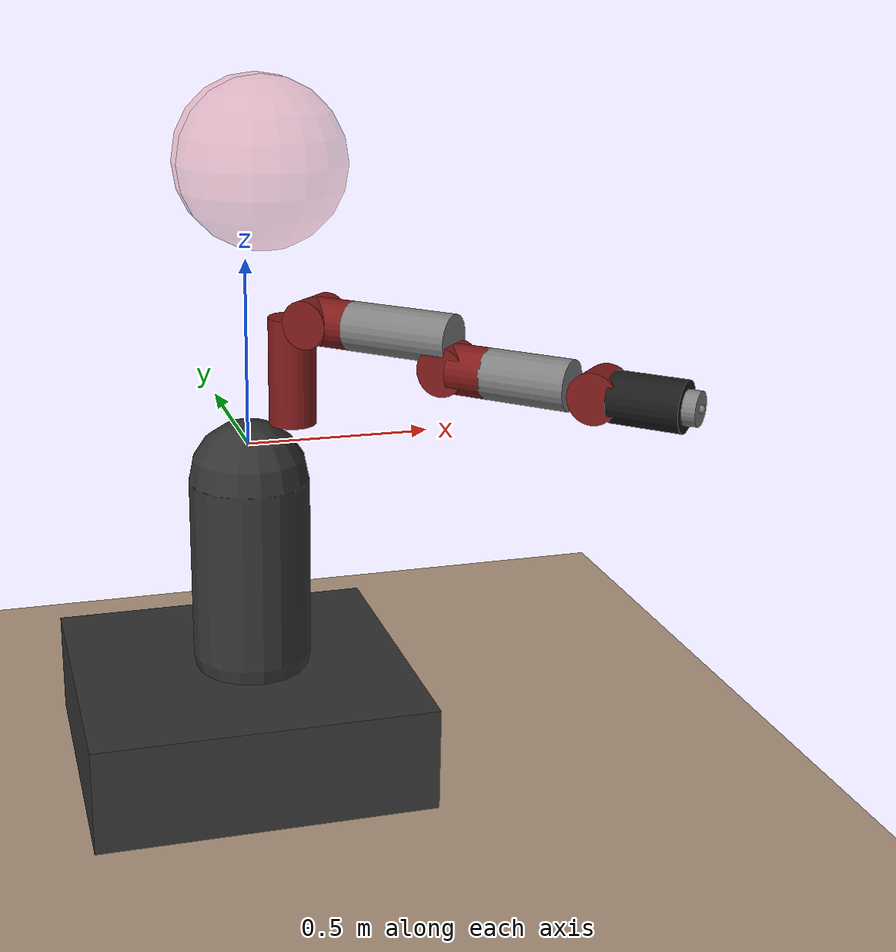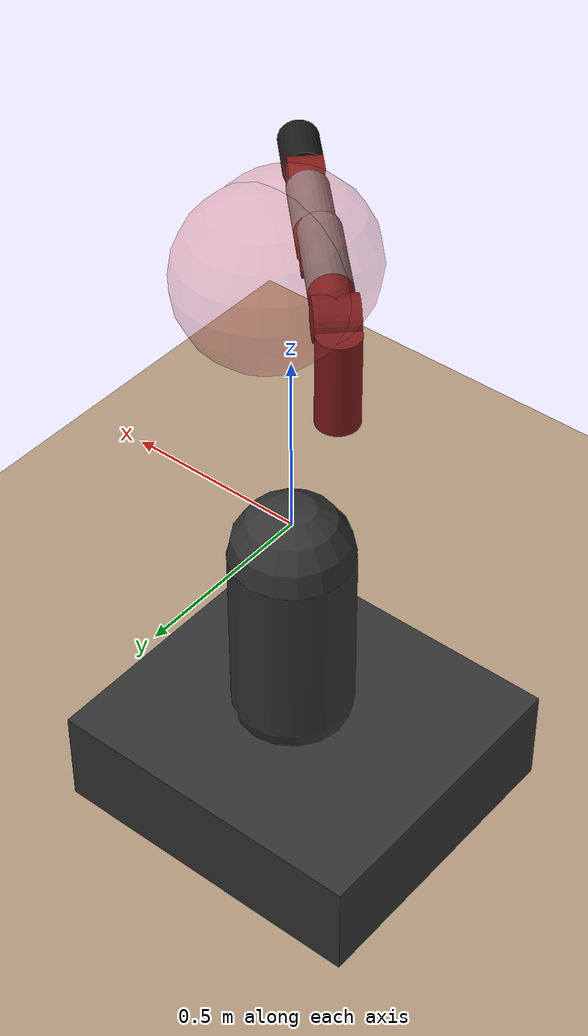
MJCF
<mujoco model="baxter_arm">
    <compiler coordinate="local" angle="radian" meshdir="meshes/" strippath="false" />
    <size njmax="795" nconmax="250" nstack="631875" />

   <contact>
        <exclude body1="right_upper_shoulder" body2="torso"/>
		<exclude body1="right_upper_shoulder" body2="right_upper_elbow"/>
		<exclude body1="right_lower_shoulder" body2="torso"/>
    </contact>

    <worldbody>
        <light directional="false" cutoff="90" exponent="1" diffuse="1 1 1" specular="0 0 0" pos="1 0 1.5" dir="-1 0 -2.5"/>
        <geom name="ground" type="plane" pos="0 0 -0.925" size="4 4 .05" rgba="0.7 0.6 0.5 1"/>

        <body name="base" pos="0 0 0">
            <inertial pos="0 0 0" mass="10" diaginertia="0.001 0.001 0.001" />
            <body name="collision_head_link_1" pos="0.11 0 0.75">
                <inertial pos="0 0 0" mass="0.0001" diaginertia="1e-008 1e-008 1e-008" />
                <geom type="sphere" size="0.22" rgba="0.8 0.3 0.3 0.3" pos="-0.07 -0.04 0" />
            </body>
            <body name="collision_head_link_2" pos="0.11 0 0.75">
                <inertial pos="0 0 0" mass="0.0001" diaginertia="1e-008 1e-008 1e-008" />
                <geom type="sphere" size="0.001" rgba="0.8 0.3 0.3 0.3" pos="0 0 0" />
                <geom type="sphere" size="0.22" rgba="0.8 0.3 0.3 0.3" pos="-0.07 0.04 0" />
            </body>
            <body name="torso" pos="0 0 0">
                <inertial pos="0 0 0" quat="0.997433 0.00167178 0.0715546 -0.00209003" mass="35.3365" diaginertia="1.87139 1.66268 0.779991" />
                <body name="pedestal" pos="0 0 0">
                    <inertial pos="0 0 0" quat="0.659267 -0.259505 -0.260945 0.655692" mass="60.864" diaginertia="6.0869 5.81635 4.20915" />
					<geom pos="-.04 0 -.8" rgba="0.2 0.2 0.2 1" type="box" size=".46 .425 .16"/>
					<geom pos="0 0 -.35" rgba="0.2 0.2 0.2 1" type="capsule" size=".165 .25"/>
                </body>

                <body name="right_arm_mount" pos="0.024645 -0.219645 0.118588" quat="0.923879 0 0 -0.382684">
                    <inertial pos="0 0 0" mass="0.0001" diaginertia="1e-008 1e-008 1e-008" />
                    <body name="right_upper_shoulder" pos="0.055695 0 0.011038">
                        <inertial pos="0.01783 0.00086 0.19127" quat="0.975667 0.0673303 -0.206117 0.0325173" mass="5.70044" diaginertia="0.0498344 0.0377511 0.0331351" />
                        <joint name="right_s0" type="hinge" pos="0 0 0" axis="0 0 1" range="-1.70168 1.70168"/>
<geom type="cylinder" size="0.06 0.1361" rgba="0.5 0.1 0.1 1" pos="0 0 0.1361"/>
                        <body name="right_lower_shoulder" pos="0.069 0 0.27035" quat="0.707107 -0.707107 0 0">
                            <inertial pos="0.06845 0.00269 -0.00529" quat="0.447487 0.536948 0.56425 0.439391" mass="3.22698" diaginertia="0.0278991 0.0212327 0.0112937" />
                            <joint name="right_s1" type="hinge" pos="0 0 0" axis="0 0 1" range="-2.147 1.047"/>
<geom type="cylinder" size="0.06 0.06" rgba="0.5 0.1 0.1 1" pos="0 0 0" />
                            <body name="right_upper_elbow" pos="0.102 0 0" quat="0.5 0.5 0.5 0.5">
                                <inertial pos="-0.00276 0.00132 0.18086" quat="0.838995 -0.0423128 -0.121287 0.52876" mass="4.31272" diaginertia="0.0287695 0.0273625 0.011409" />
                                <joint name="right_e0" type="hinge" pos="0 0 0" axis="0 0 1" range="-3.05418 3.05418"/>
<geom type="cylinder" size="0.06 0.0535" rgba="0.5 0.1 0.1 1" pos="0 0 -0.0535" />
								<geom name="right_upper_elbow_visual" type="cylinder" size="0.06 0.1365" pos="0 0 0.1365" />
                                <body name="right_lower_elbow" pos="0.069 0 0.26242" quat="0.5 -0.5 -0.5 -0.5">
                                    <inertial pos="0.02611 0.00159 -0.01117" quat="0.440433 0.577149 0.562777 0.395221" mass="2.07206" diaginertia="0.0132096 0.00950002 0.00685697" />
                                    <joint name="right_e1" type="hinge" pos="0 0 0" axis="0 0 1" range="-0.05 2.618"/>
<geom type="cylinder" size="0.06 0.05" rgba="0.5 0.1 0.1 1" pos="0 0 0" />
                                    <body name="right_upper_forearm" pos="0.10359 0 0" quat="0.5 0.5 0.5 0.5">
                                        <inertial pos="-0.00168 0.0046 0.13952" quat="0.892709 -0.0256256 0.00446984 0.449882" mass="2.24665" diaginertia="0.016916 0.0165511 0.00371123" />
                                        <joint name="right_w0" type="hinge" pos="0 0 0" axis="0 0 1" range="-3.059 3.059"/>
<geom type="cylinder" size="0.06 0.044" rgba="0.5 0.1 0.1 1" pos="0 0 -0.044" />
										<geom name="right_upper_forearm_visual" type="cylinder" size="0.06 0.1036" pos="0 0 0.1" />
                                        <body name="right_lower_forearm" pos="0.01 0 0.2707" quat="0.5 -0.5 -0.5 -0.5">
                                            <inertial pos="0.06041 0.00697 0.006" quat="0.456911 0.468526 0.475683 0.587743" mass="1.60979" diaginertia="0.00708828 0.00552689 0.00379383" />
                                            <joint name="right_w1" type="hinge" pos="0 0 0" axis="0 0 1" range="-1.5708 2.094"/>
<geom type="cylinder" size="0.06 0.05" rgba="0.5 0.1 0.1 1" pos="0 0 0" />
                                            <body name="right_wrist" pos="0.115975 0 0" quat="0.5 0.5 0.5 0.5">
                                                <inertial pos="0.00198 0.00125 0.01855" quat="0.0594843 0.68926 -0.16016 0.704082" mass="0.35093" diaginertia="0.0003082 0.000269928 0.000251035" />
                                                <joint name="right_w2" type="hinge" pos="0 0 0" axis="0 0 1" range="-3.059 3.059"/>
<geom type="cylinder" size="0.06 0.0825" rgba="0.1 0.1 0.1 1" pos="0 0 0" />
                                                <body name="right_hand" pos="0 0 0.11355">
                                                    <inertial pos="0.01093 0.00042 -0.01532" quat="0.025365 0.814618 0.0196357 0.579109" mass="0.19125" diaginertia="0.000246058 0.000211549 0.000167391" />
                                                    <geom type="cylinder" size="0.04 0.0232" pos="0 0 -0.0232" />
                                                    <site name="leg_bottom" pos="0 0 0" size="0.01" />

                                                </body>
                                            </body>
                                        </body>
                                    </body>
                                </body>
                            </body>
                        </body>
                    </body>
                </body>

            </body>
        </body>
    </worldbody>
</mujoco>
